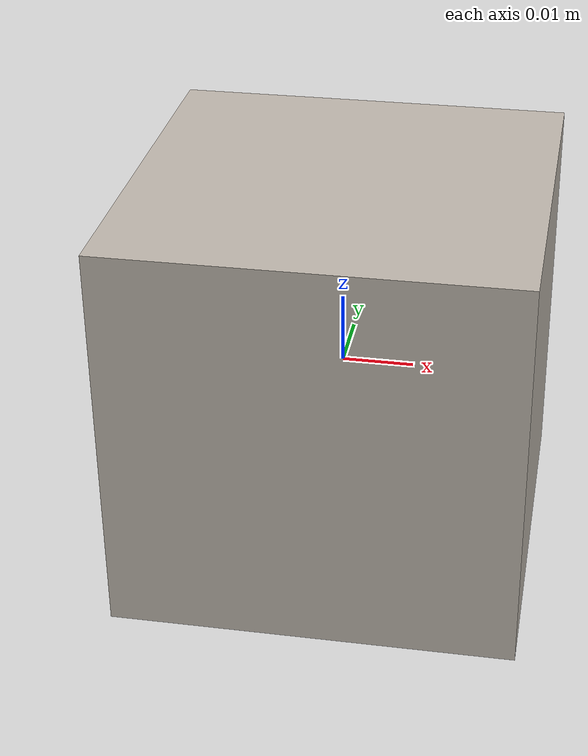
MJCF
<?xml version="1.0" encoding="UTF-8"?>
<mujoco model="aruco_cube">
  <!-- Box: 56.25 x 56.25 x 56.25 mm -->
  <!-- Origin at cube center, XYZ axes match detect_cube.py -->
  <!-- Units: meters -->

  <compiler angle="radian" meshdir="."/>

  <asset>
    <texture name="cube_tex" type="2d" file="cube_atlas.png"/>
    <material name="cube_mat" texture="cube_tex" specular="0.1" shininess="0.1"/>
    <mesh name="cube_mesh" file="cube.obj"/>
  </asset>

  <worldbody>
    <body name="cube" pos="0 0 0">
      <freejoint name="cube_joint"/>
      <geom name="cube_visual" type="mesh" mesh="cube_mesh" material="cube_mat" contype="0" conaffinity="0" group="1" density="0"/>
      <geom name="cube_collision" type="box" size="0.028125 0.028125 0.028125" density="1250" rgba="0.5 0.5 0.5 0" contype="1" conaffinity="1" group="2"/>
      <site name="cube_center" pos="0 0 0" size="0.001"/>
    </body>
  </worldbody>
</mujoco>
